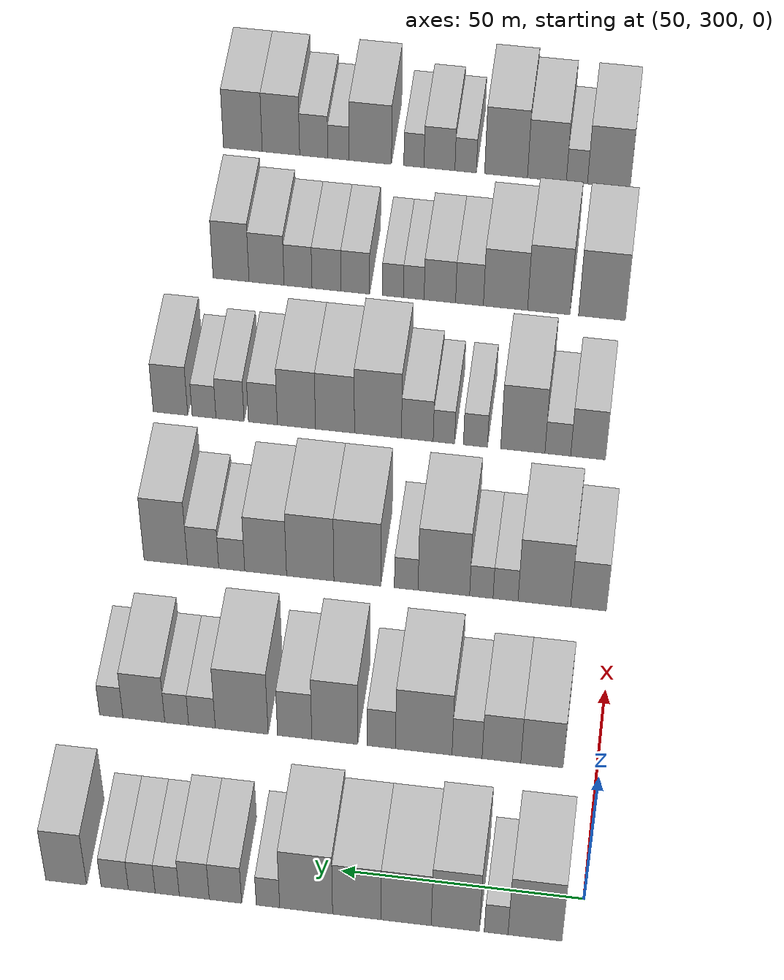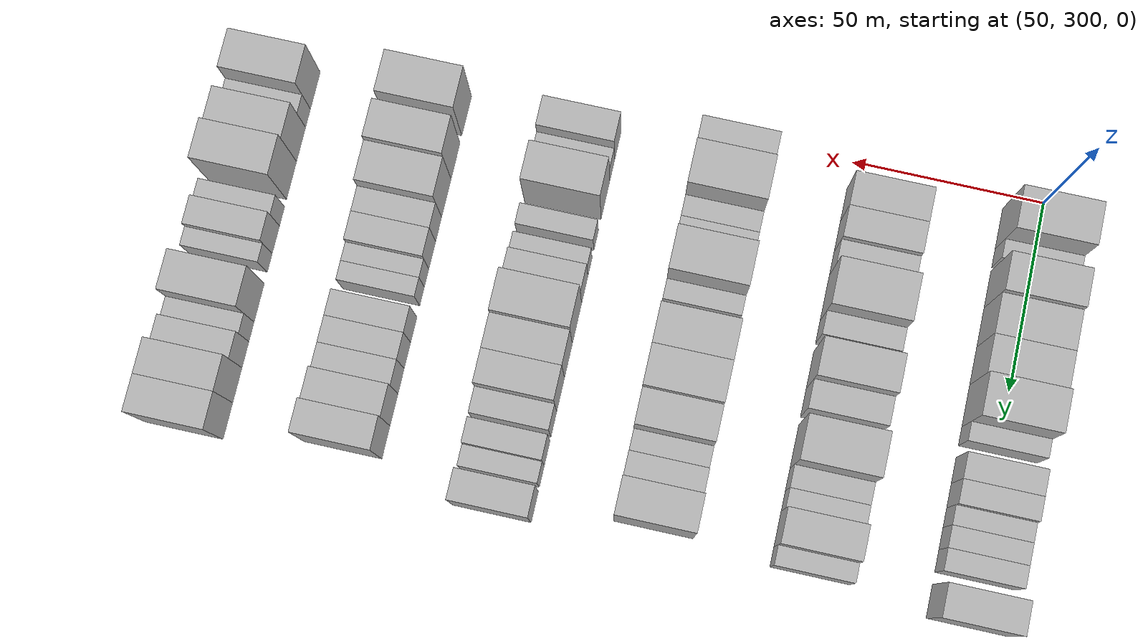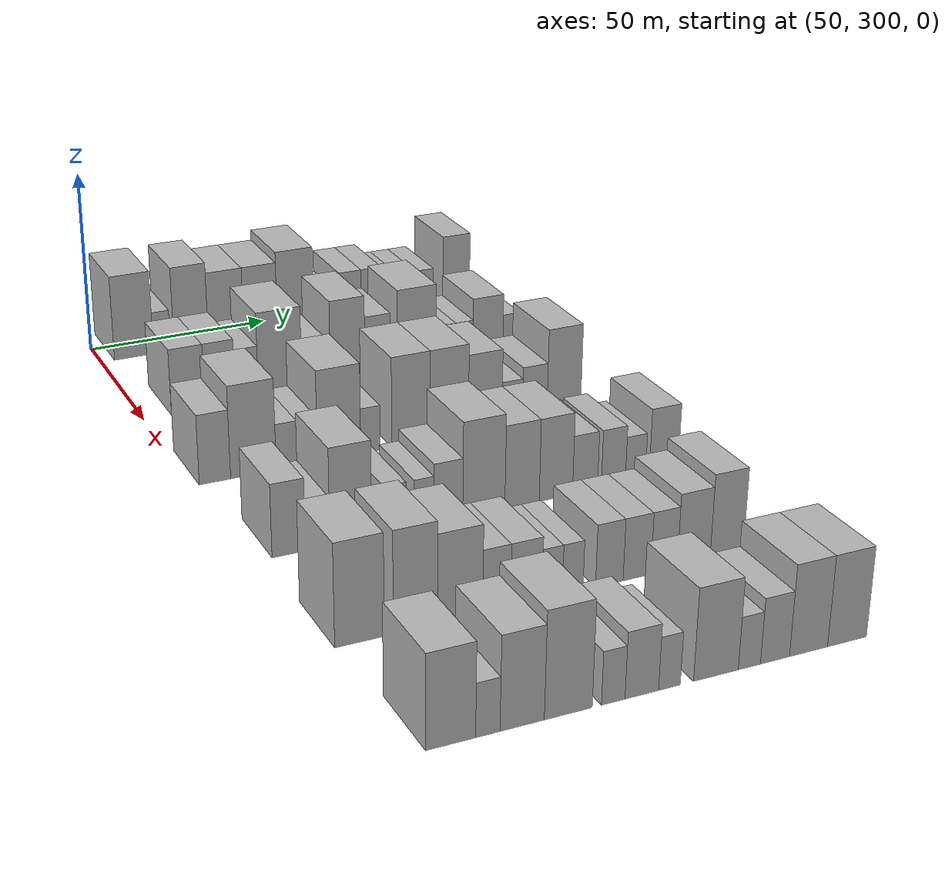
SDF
<sdf version="1.6">
 <world name="default">
  <model name="building_103">
   <static>1</static>
   <pose>50.0000 309.1850 0 0.000000 0.000000 0.000000</pose>
   <link name="link">
    <pose>0 0 12.00 0 0 0</pose>
    <collision name="collision"><geometry><box><size>20.0000 10.9504 24.0000</size></box></geometry></collision>
    <visual name="visual">
     <cast_shadows>0</cast_shadows>
     <geometry><box><size>20.0000 10.9504 24.0000</size></box></geometry>
     <material>
      <script>
       <uri>model://HANNAS_wall/materials/scripts</uri>
       <uri>model://HANNAS_wall/materials/textures</uri>
       <name>vrc/HANNAS_wall</name>
      </script>
     </material>
    </visual>
   </link>
  </model>
  <model name="building_104">
   <static>1</static>
   <pose>50.0000 317.0792 0 0.000000 0.000000 0.000000</pose>
   <link name="link">
    <pose>0 0 6.00 0 0 0</pose>
    <collision name="collision"><geometry><box><size>20.0000 4.8381 12.0000</size></box></geometry></collision>
    <visual name="visual">
     <cast_shadows>0</cast_shadows>
     <geometry><box><size>20.0000 4.8381 12.0000</size></box></geometry>
     <material>
      <script>
       <uri>model://HANNAS_wall/materials/scripts</uri>
       <uri>model://HANNAS_wall/materials/textures</uri>
       <name>vrc/HANNAS_wall</name>
      </script>
     </material>
    </visual>
   </link>
  </model>
  <model name="building_105">
   <static>1</static>
   <pose>50.0000 325.4073 0 0.000000 0.000000 0.000000</pose>
   <link name="link">
    <pose>0 0 12.00 0 0 0</pose>
    <collision name="collision"><geometry><box><size>20.0000 9.8181 24.0000</size></box></geometry></collision>
    <visual name="visual">
     <cast_shadows>0</cast_shadows>
     <geometry><box><size>20.0000 9.8181 24.0000</size></box></geometry>
     <material>
      <script>
       <uri>model://HANNAS_wall/materials/scripts</uri>
       <uri>model://HANNAS_wall/materials/textures</uri>
       <name>vrc/HANNAS_wall</name>
      </script>
     </material>
    </visual>
   </link>
  </model>
  <model name="building_106">
   <static>1</static>
   <pose>50.0000 335.4635 0 0.000000 0.000000 0.000000</pose>
   <link name="link">
    <pose>0 0 10.50 0 0 0</pose>
    <collision name="collision"><geometry><box><size>20.0000 10.2942 21.0000</size></box></geometry></collision>
    <visual name="visual">
     <cast_shadows>0</cast_shadows>
     <geometry><box><size>20.0000 10.2942 21.0000</size></box></geometry>
     <material>
      <script>
       <uri>model://HANNAS_wall/materials/scripts</uri>
       <uri>model://HANNAS_wall/materials/textures</uri>
       <name>vrc/HANNAS_wall</name>
      </script>
     </material>
    </visual>
   </link>
  </model>
  <model name="building_107">
   <static>1</static>
   <pose>50.0000 345.5547 0 0.000000 0.000000 0.000000</pose>
   <link name="link">
    <pose>0 0 10.50 0 0 0</pose>
    <collision name="collision"><geometry><box><size>20.0000 9.8883 21.0000</size></box></geometry></collision>
    <visual name="visual">
     <cast_shadows>0</cast_shadows>
     <geometry><box><size>20.0000 9.8883 21.0000</size></box></geometry>
     <material>
      <script>
       <uri>model://HANNAS_wall/materials/scripts</uri>
       <uri>model://HANNAS_wall/materials/textures</uri>
       <name>vrc/HANNAS_wall</name>
      </script>
     </material>
    </visual>
   </link>
  </model>
  <model name="building_108">
   <static>1</static>
   <pose>50.0000 355.9267 0 0.000000 0.000000 0.000000</pose>
   <link name="link">
    <pose>0 0 12.00 0 0 0</pose>
    <collision name="collision"><geometry><box><size>20.0000 10.8557 24.0000</size></box></geometry></collision>
    <visual name="visual">
     <cast_shadows>0</cast_shadows>
     <geometry><box><size>20.0000 10.8557 24.0000</size></box></geometry>
     <material>
      <script>
       <uri>model://HANNAS_wall/materials/scripts</uri>
       <uri>model://HANNAS_wall/materials/textures</uri>
       <name>vrc/HANNAS_wall</name>
      </script>
     </material>
    </visual>
   </link>
  </model>
  <model name="building_109">
   <static>1</static>
   <pose>50.0000 363.7673 0 0.000000 0.000000 0.000000</pose>
   <link name="link">
    <pose>0 0 6.00 0 0 0</pose>
    <collision name="collision"><geometry><box><size>20.0000 4.8254 12.0000</size></box></geometry></collision>
    <visual name="visual">
     <cast_shadows>0</cast_shadows>
     <geometry><box><size>20.0000 4.8254 12.0000</size></box></geometry>
     <material>
      <script>
       <uri>model://HANNAS_wall/materials/scripts</uri>
       <uri>model://HANNAS_wall/materials/textures</uri>
       <name>vrc/HANNAS_wall</name>
      </script>
     </material>
    </visual>
   </link>
  </model>
  <model name="building_110">
   <static>1</static>
   <pose>50.0000 372.5244 0 0.000000 0.000000 0.000000</pose>
   <link name="link">
    <pose>0 0 7.50 0 0 0</pose>
    <collision name="collision"><geometry><box><size>20.0000 6.6890 15.0000</size></box></geometry></collision>
    <visual name="visual">
     <cast_shadows>0</cast_shadows>
     <geometry><box><size>20.0000 6.6890 15.0000</size></box></geometry>
     <material>
      <script>
       <uri>model://HANNAS_wall/materials/scripts</uri>
       <uri>model://HANNAS_wall/materials/textures</uri>
       <name>vrc/HANNAS_wall</name>
      </script>
     </material>
    </visual>
   </link>
  </model>
  <model name="building_111">
   <static>1</static>
   <pose>50.0000 378.9645 0 0.000000 0.000000 0.000000</pose>
   <link name="link">
    <pose>0 0 7.50 0 0 0</pose>
    <collision name="collision"><geometry><box><size>20.0000 6.1912 15.0000</size></box></geometry></collision>
    <visual name="visual">
     <cast_shadows>0</cast_shadows>
     <geometry><box><size>20.0000 6.1912 15.0000</size></box></geometry>
     <material>
      <script>
       <uri>model://HANNAS_wall/materials/scripts</uri>
       <uri>model://HANNAS_wall/materials/textures</uri>
       <name>vrc/HANNAS_wall</name>
      </script>
     </material>
    </visual>
   </link>
  </model>
  <model name="building_112">
   <static>1</static>
   <pose>50.0000 384.5437 0 0.000000 0.000000 0.000000</pose>
   <link name="link">
    <pose>0 0 6.00 0 0 0</pose>
    <collision name="collision"><geometry><box><size>20.0000 4.9672 12.0000</size></box></geometry></collision>
    <visual name="visual">
     <cast_shadows>0</cast_shadows>
     <geometry><box><size>20.0000 4.9672 12.0000</size></box></geometry>
     <material>
      <script>
       <uri>model://HANNAS_wall/materials/scripts</uri>
       <uri>model://HANNAS_wall/materials/textures</uri>
       <name>vrc/HANNAS_wall</name>
      </script>
     </material>
    </visual>
   </link>
  </model>
  <model name="building_113">
   <static>1</static>
   <pose>50.0000 389.8139 0 0.000000 0.000000 0.000000</pose>
   <link name="link">
    <pose>0 0 6.00 0 0 0</pose>
    <collision name="collision"><geometry><box><size>20.0000 5.5732 12.0000</size></box></geometry></collision>
    <visual name="visual">
     <cast_shadows>0</cast_shadows>
     <geometry><box><size>20.0000 5.5732 12.0000</size></box></geometry>
     <material>
      <script>
       <uri>model://HANNAS_wall/materials/scripts</uri>
       <uri>model://HANNAS_wall/materials/textures</uri>
       <name>vrc/HANNAS_wall</name>
      </script>
     </material>
    </visual>
   </link>
  </model>
  <model name="building_114">
   <static>1</static>
   <pose>50.0000 395.4306 0 0.000000 0.000000 0.000000</pose>
   <link name="link">
    <pose>0 0 6.00 0 0 0</pose>
    <collision name="collision"><geometry><box><size>20.0000 5.6602 12.0000</size></box></geometry></collision>
    <visual name="visual">
     <cast_shadows>0</cast_shadows>
     <geometry><box><size>20.0000 5.6602 12.0000</size></box></geometry>
     <material>
      <script>
       <uri>model://HANNAS_wall/materials/scripts</uri>
       <uri>model://HANNAS_wall/materials/textures</uri>
       <name>vrc/HANNAS_wall</name>
      </script>
     </material>
    </visual>
   </link>
  </model>
  <model name="building_115">
   <static>1</static>
   <pose>50.0000 405.4915 0 0.000000 0.000000 0.000000</pose>
   <link name="link">
    <pose>0 0 10.50 0 0 0</pose>
    <collision name="collision"><geometry><box><size>20.0000 8.4617 21.0000</size></box></geometry></collision>
    <visual name="visual">
     <cast_shadows>0</cast_shadows>
     <geometry><box><size>20.0000 8.4617 21.0000</size></box></geometry>
     <material>
      <script>
       <uri>model://HANNAS_wall/materials/scripts</uri>
       <uri>model://HANNAS_wall/materials/textures</uri>
       <name>vrc/HANNAS_wall</name>
      </script>
     </material>
    </visual>
   </link>
  </model>
  <model name="building_239">
   <static>1</static>
   <pose>90.0000 311.7016 0 0.000000 0.000000 0.000000</pose>
   <link name="link">
    <pose>0 0 9.00 0 0 0</pose>
    <collision name="collision"><geometry><box><size>20.0000 8.8964 18.0000</size></box></geometry></collision>
    <visual name="visual">
     <cast_shadows>0</cast_shadows>
     <geometry><box><size>20.0000 8.8964 18.0000</size></box></geometry>
     <material>
      <script>
       <uri>model://HANNAS_wall/materials/scripts</uri>
       <uri>model://HANNAS_wall/materials/textures</uri>
       <name>vrc/HANNAS_wall</name>
      </script>
     </material>
    </visual>
   </link>
  </model>
  <model name="building_240">
   <static>1</static>
   <pose>90.0000 320.2366 0 0.000000 0.000000 0.000000</pose>
   <link name="link">
    <pose>0 0 9.00 0 0 0</pose>
    <collision name="collision"><geometry><box><size>20.0000 8.1736 18.0000</size></box></geometry></collision>
    <visual name="visual">
     <cast_shadows>0</cast_shadows>
     <geometry><box><size>20.0000 8.1736 18.0000</size></box></geometry>
     <material>
      <script>
       <uri>model://HANNAS_wall/materials/scripts</uri>
       <uri>model://HANNAS_wall/materials/textures</uri>
       <name>vrc/HANNAS_wall</name>
      </script>
     </material>
    </visual>
   </link>
  </model>
  <model name="building_241">
   <static>1</static>
   <pose>90.0000 327.5016 0 0.000000 0.000000 0.000000</pose>
   <link name="link">
    <pose>0 0 7.50 0 0 0</pose>
    <collision name="collision"><geometry><box><size>20.0000 6.3562 15.0000</size></box></geometry></collision>
    <visual name="visual">
     <cast_shadows>0</cast_shadows>
     <geometry><box><size>20.0000 6.3562 15.0000</size></box></geometry>
     <material>
      <script>
       <uri>model://HANNAS_wall/materials/scripts</uri>
       <uri>model://HANNAS_wall/materials/textures</uri>
       <name>vrc/HANNAS_wall</name>
      </script>
     </material>
    </visual>
   </link>
  </model>
  <model name="building_242">
   <static>1</static>
   <pose>90.0000 336.6633 0 0.000000 0.000000 0.000000</pose>
   <link name="link">
    <pose>0 0 12.00 0 0 0</pose>
    <collision name="collision"><geometry><box><size>20.0000 11.9672 24.0000</size></box></geometry></collision>
    <visual name="visual">
     <cast_shadows>0</cast_shadows>
     <geometry><box><size>20.0000 11.9672 24.0000</size></box></geometry>
     <material>
      <script>
       <uri>model://HANNAS_wall/materials/scripts</uri>
       <uri>model://HANNAS_wall/materials/textures</uri>
       <name>vrc/HANNAS_wall</name>
      </script>
     </material>
    </visual>
   </link>
  </model>
  <model name="building_243">
   <static>1</static>
   <pose>90.0000 345.6519 0 0.000000 0.000000 0.000000</pose>
   <link name="link">
    <pose>0 0 7.50 0 0 0</pose>
    <collision name="collision"><geometry><box><size>20.0000 6.0099 15.0000</size></box></geometry></collision>
    <visual name="visual">
     <cast_shadows>0</cast_shadows>
     <geometry><box><size>20.0000 6.0099 15.0000</size></box></geometry>
     <material>
      <script>
       <uri>model://HANNAS_wall/materials/scripts</uri>
       <uri>model://HANNAS_wall/materials/textures</uri>
       <name>vrc/HANNAS_wall</name>
      </script>
     </material>
    </visual>
   </link>
  </model>
  <model name="building_244">
   <static>1</static>
   <pose>90.0000 355.5329 0 0.000000 0.000000 0.000000</pose>
   <link name="link">
    <pose>0 0 12.00 0 0 0</pose>
    <collision name="collision"><geometry><box><size>20.0000 9.7520 24.0000</size></box></geometry></collision>
    <visual name="visual">
     <cast_shadows>0</cast_shadows>
     <geometry><box><size>20.0000 9.7520 24.0000</size></box></geometry>
     <material>
      <script>
       <uri>model://HANNAS_wall/materials/scripts</uri>
       <uri>model://HANNAS_wall/materials/textures</uri>
       <name>vrc/HANNAS_wall</name>
      </script>
     </material>
    </visual>
   </link>
  </model>
  <model name="building_245">
   <static>1</static>
   <pose>90.0000 364.0609 0 0.000000 0.000000 0.000000</pose>
   <link name="link">
    <pose>0 0 9.00 0 0 0</pose>
    <collision name="collision"><geometry><box><size>20.0000 7.3041 18.0000</size></box></geometry></collision>
    <visual name="visual">
     <cast_shadows>0</cast_shadows>
     <geometry><box><size>20.0000 7.3041 18.0000</size></box></geometry>
     <material>
      <script>
       <uri>model://HANNAS_wall/materials/scripts</uri>
       <uri>model://HANNAS_wall/materials/textures</uri>
       <name>vrc/HANNAS_wall</name>
      </script>
     </material>
    </visual>
   </link>
  </model>
  <model name="building_246">
   <static>1</static>
   <pose>90.0000 375.3575 0 0.000000 0.000000 0.000000</pose>
   <link name="link">
    <pose>0 0 12.00 0 0 0</pose>
    <collision name="collision"><geometry><box><size>20.0000 11.2891 24.0000</size></box></geometry></collision>
    <visual name="visual">
     <cast_shadows>0</cast_shadows>
     <geometry><box><size>20.0000 11.2891 24.0000</size></box></geometry>
     <material>
      <script>
       <uri>model://HANNAS_wall/materials/scripts</uri>
       <uri>model://HANNAS_wall/materials/textures</uri>
       <name>vrc/HANNAS_wall</name>
      </script>
     </material>
    </visual>
   </link>
  </model>
  <model name="building_247">
   <static>1</static>
   <pose>90.0000 383.8591 0 0.000000 0.000000 0.000000</pose>
   <link name="link">
    <pose>0 0 6.00 0 0 0</pose>
    <collision name="collision"><geometry><box><size>20.0000 5.7141 12.0000</size></box></geometry></collision>
    <visual name="visual">
     <cast_shadows>0</cast_shadows>
     <geometry><box><size>20.0000 5.7141 12.0000</size></box></geometry>
     <material>
      <script>
       <uri>model://HANNAS_wall/materials/scripts</uri>
       <uri>model://HANNAS_wall/materials/textures</uri>
       <name>vrc/HANNAS_wall</name>
      </script>
     </material>
    </visual>
   </link>
  </model>
  <model name="building_248">
   <static>1</static>
   <pose>90.0000 389.2737 0 0.000000 0.000000 0.000000</pose>
   <link name="link">
    <pose>0 0 6.00 0 0 0</pose>
    <collision name="collision"><geometry><box><size>20.0000 5.1151 12.0000</size></box></geometry></collision>
    <visual name="visual">
     <cast_shadows>0</cast_shadows>
     <geometry><box><size>20.0000 5.1151 12.0000</size></box></geometry>
     <material>
      <script>
       <uri>model://HANNAS_wall/materials/scripts</uri>
       <uri>model://HANNAS_wall/materials/textures</uri>
       <name>vrc/HANNAS_wall</name>
      </script>
     </material>
    </visual>
   </link>
  </model>
  <model name="building_249">
   <static>1</static>
   <pose>90.0000 396.3274 0 0.000000 0.000000 0.000000</pose>
   <link name="link">
    <pose>0 0 9.00 0 0 0</pose>
    <collision name="collision"><geometry><box><size>20.0000 8.9923 18.0000</size></box></geometry></collision>
    <visual name="visual">
     <cast_shadows>0</cast_shadows>
     <geometry><box><size>20.0000 8.9923 18.0000</size></box></geometry>
     <material>
      <script>
       <uri>model://HANNAS_wall/materials/scripts</uri>
       <uri>model://HANNAS_wall/materials/textures</uri>
       <name>vrc/HANNAS_wall</name>
      </script>
     </material>
    </visual>
   </link>
  </model>
  <model name="building_250">
   <static>1</static>
   <pose>90.0000 403.3296 0 0.000000 0.000000 0.000000</pose>
   <link name="link">
    <pose>0 0 6.00 0 0 0</pose>
    <collision name="collision"><geometry><box><size>20.0000 5.0120 12.0000</size></box></geometry></collision>
    <visual name="visual">
     <cast_shadows>0</cast_shadows>
     <geometry><box><size>20.0000 5.0120 12.0000</size></box></geometry>
     <material>
      <script>
       <uri>model://HANNAS_wall/materials/scripts</uri>
       <uri>model://HANNAS_wall/materials/textures</uri>
       <name>vrc/HANNAS_wall</name>
      </script>
     </material>
    </visual>
   </link>
  </model>
  <model name="building_376">
   <static>1</static>
   <pose>130.0000 305.4945 0 0.000000 0.000000 0.000000</pose>
   <link name="link">
    <pose>0 0 9.00 0 0 0</pose>
    <collision name="collision"><geometry><box><size>20.0000 7.7795 18.0000</size></box></geometry></collision>
    <visual name="visual">
     <cast_shadows>0</cast_shadows>
     <geometry><box><size>20.0000 7.7795 18.0000</size></box></geometry>
     <material>
      <script>
       <uri>model://HANNAS_wall/materials/scripts</uri>
       <uri>model://HANNAS_wall/materials/textures</uri>
       <name>vrc/HANNAS_wall</name>
      </script>
     </material>
    </visual>
   </link>
  </model>
  <model name="building_377">
   <static>1</static>
   <pose>130.0000 315.1176 0 0.000000 0.000000 0.000000</pose>
   <link name="link">
    <pose>0 0 12.00 0 0 0</pose>
    <collision name="collision"><geometry><box><size>20.0000 11.4667 24.0000</size></box></geometry></collision>
    <visual name="visual">
     <cast_shadows>0</cast_shadows>
     <geometry><box><size>20.0000 11.4667 24.0000</size></box></geometry>
     <material>
      <script>
       <uri>model://HANNAS_wall/materials/scripts</uri>
       <uri>model://HANNAS_wall/materials/textures</uri>
       <name>vrc/HANNAS_wall</name>
      </script>
     </material>
    </visual>
   </link>
  </model>
  <model name="building_378">
   <static>1</static>
   <pose>130.0000 323.5738 0 0.000000 0.000000 0.000000</pose>
   <link name="link">
    <pose>0 0 6.00 0 0 0</pose>
    <collision name="collision"><geometry><box><size>20.0000 5.4458 12.0000</size></box></geometry></collision>
    <visual name="visual">
     <cast_shadows>0</cast_shadows>
     <geometry><box><size>20.0000 5.4458 12.0000</size></box></geometry>
     <material>
      <script>
       <uri>model://HANNAS_wall/materials/scripts</uri>
       <uri>model://HANNAS_wall/materials/textures</uri>
       <name>vrc/HANNAS_wall</name>
      </script>
     </material>
    </visual>
   </link>
  </model>
  <model name="building_379">
   <static>1</static>
   <pose>130.0000 328.8610 0 0.000000 0.000000 0.000000</pose>
   <link name="link">
    <pose>0 0 6.00 0 0 0</pose>
    <collision name="collision"><geometry><box><size>20.0000 5.1287 12.0000</size></box></geometry></collision>
    <visual name="visual">
     <cast_shadows>0</cast_shadows>
     <geometry><box><size>20.0000 5.1287 12.0000</size></box></geometry>
     <material>
      <script>
       <uri>model://HANNAS_wall/materials/scripts</uri>
       <uri>model://HANNAS_wall/materials/textures</uri>
       <name>vrc/HANNAS_wall</name>
      </script>
     </material>
    </visual>
   </link>
  </model>
  <model name="building_380">
   <static>1</static>
   <pose>130.0000 337.0694 0 0.000000 0.000000 0.000000</pose>
   <link name="link">
    <pose>0 0 12.00 0 0 0</pose>
    <collision name="collision"><geometry><box><size>20.0000 11.2880 24.0000</size></box></geometry></collision>
    <visual name="visual">
     <cast_shadows>0</cast_shadows>
     <geometry><box><size>20.0000 11.2880 24.0000</size></box></geometry>
     <material>
      <script>
       <uri>model://HANNAS_wall/materials/scripts</uri>
       <uri>model://HANNAS_wall/materials/textures</uri>
       <name>vrc/HANNAS_wall</name>
      </script>
     </material>
    </visual>
   </link>
  </model>
  <model name="building_381">
   <static>1</static>
   <pose>130.0000 345.3097 0 0.000000 0.000000 0.000000</pose>
   <link name="link">
    <pose>0 0 6.00 0 0 0</pose>
    <collision name="collision"><geometry><box><size>20.0000 5.1926 12.0000</size></box></geometry></collision>
    <visual name="visual">
     <cast_shadows>0</cast_shadows>
     <geometry><box><size>20.0000 5.1926 12.0000</size></box></geometry>
     <material>
      <script>
       <uri>model://HANNAS_wall/materials/scripts</uri>
       <uri>model://HANNAS_wall/materials/textures</uri>
       <name>vrc/HANNAS_wall</name>
      </script>
     </material>
    </visual>
   </link>
  </model>
  <model name="building_382">
   <static>1</static>
   <pose>130.0000 356.0534 0 0.000000 0.000000 0.000000</pose>
   <link name="link">
    <pose>0 0 12.00 0 0 0</pose>
    <collision name="collision"><geometry><box><size>20.0000 10.2948 24.0000</size></box></geometry></collision>
    <visual name="visual">
     <cast_shadows>0</cast_shadows>
     <geometry><box><size>20.0000 10.2948 24.0000</size></box></geometry>
     <material>
      <script>
       <uri>model://HANNAS_wall/materials/scripts</uri>
       <uri>model://HANNAS_wall/materials/textures</uri>
       <name>vrc/HANNAS_wall</name>
      </script>
     </material>
    </visual>
   </link>
  </model>
  <model name="building_383">
   <static>1</static>
   <pose>130.0000 366.4220 0 0.000000 0.000000 0.000000</pose>
   <link name="link">
    <pose>0 0 12.00 0 0 0</pose>
    <collision name="collision"><geometry><box><size>20.0000 10.4425 24.0000</size></box></geometry></collision>
    <visual name="visual">
     <cast_shadows>0</cast_shadows>
     <geometry><box><size>20.0000 10.4425 24.0000</size></box></geometry>
     <material>
      <script>
       <uri>model://HANNAS_wall/materials/scripts</uri>
       <uri>model://HANNAS_wall/materials/textures</uri>
       <name>vrc/HANNAS_wall</name>
      </script>
     </material>
    </visual>
   </link>
  </model>
  <model name="building_384">
   <static>1</static>
   <pose>130.0000 376.2594 0 0.000000 0.000000 0.000000</pose>
   <link name="link">
    <pose>0 0 10.50 0 0 0</pose>
    <collision name="collision"><geometry><box><size>20.0000 9.2322 21.0000</size></box></geometry></collision>
    <visual name="visual">
     <cast_shadows>0</cast_shadows>
     <geometry><box><size>20.0000 9.2322 21.0000</size></box></geometry>
     <material>
      <script>
       <uri>model://HANNAS_wall/materials/scripts</uri>
       <uri>model://HANNAS_wall/materials/textures</uri>
       <name>vrc/HANNAS_wall</name>
      </script>
     </material>
    </visual>
   </link>
  </model>
  <model name="building_385">
   <static>1</static>
   <pose>130.0000 383.7558 0 0.000000 0.000000 0.000000</pose>
   <link name="link">
    <pose>0 0 6.00 0 0 0</pose>
    <collision name="collision"><geometry><box><size>20.0000 5.7607 12.0000</size></box></geometry></collision>
    <visual name="visual">
     <cast_shadows>0</cast_shadows>
     <geometry><box><size>20.0000 5.7607 12.0000</size></box></geometry>
     <material>
      <script>
       <uri>model://HANNAS_wall/materials/scripts</uri>
       <uri>model://HANNAS_wall/materials/textures</uri>
       <name>vrc/HANNAS_wall</name>
      </script>
     </material>
    </visual>
   </link>
  </model>
  <model name="building_386">
   <static>1</static>
   <pose>130.0000 390.1041 0 0.000000 0.000000 0.000000</pose>
   <link name="link">
    <pose>0 0 7.50 0 0 0</pose>
    <collision name="collision"><geometry><box><size>20.0000 6.9359 15.0000</size></box></geometry></collision>
    <visual name="visual">
     <cast_shadows>0</cast_shadows>
     <geometry><box><size>20.0000 6.9359 15.0000</size></box></geometry>
     <material>
      <script>
       <uri>model://HANNAS_wall/materials/scripts</uri>
       <uri>model://HANNAS_wall/materials/textures</uri>
       <name>vrc/HANNAS_wall</name>
      </script>
     </material>
    </visual>
   </link>
  </model>
  <model name="building_387">
   <static>1</static>
   <pose>130.0000 398.3816 0 0.000000 0.000000 0.000000</pose>
   <link name="link">
    <pose>0 0 12.00 0 0 0</pose>
    <collision name="collision"><geometry><box><size>20.0000 9.6190 24.0000</size></box></geometry></collision>
    <visual name="visual">
     <cast_shadows>0</cast_shadows>
     <geometry><box><size>20.0000 9.6190 24.0000</size></box></geometry>
     <material>
      <script>
       <uri>model://HANNAS_wall/materials/scripts</uri>
       <uri>model://HANNAS_wall/materials/textures</uri>
       <name>vrc/HANNAS_wall</name>
      </script>
     </material>
    </visual>
   </link>
  </model>
  <model name="building_505">
   <static>1</static>
   <pose>170.0000 309.1703 0 0.000000 0.000000 0.000000</pose>
   <link name="link">
    <pose>0 0 9.00 0 0 0</pose>
    <collision name="collision"><geometry><box><size>20.0000 7.8112 18.0000</size></box></geometry></collision>
    <visual name="visual">
     <cast_shadows>0</cast_shadows>
     <geometry><box><size>20.0000 7.8112 18.0000</size></box></geometry>
     <material>
      <script>
       <uri>model://HANNAS_wall/materials/scripts</uri>
       <uri>model://HANNAS_wall/materials/textures</uri>
       <name>vrc/HANNAS_wall</name>
      </script>
     </material>
    </visual>
   </link>
  </model>
  <model name="building_506">
   <static>1</static>
   <pose>170.0000 315.9822 0 0.000000 0.000000 0.000000</pose>
   <link name="link">
    <pose>0 0 6.00 0 0 0</pose>
    <collision name="collision"><geometry><box><size>20.0000 5.8126 12.0000</size></box></geometry></collision>
    <visual name="visual">
     <cast_shadows>0</cast_shadows>
     <geometry><box><size>20.0000 5.8126 12.0000</size></box></geometry>
     <material>
      <script>
       <uri>model://HANNAS_wall/materials/scripts</uri>
       <uri>model://HANNAS_wall/materials/textures</uri>
       <name>vrc/HANNAS_wall</name>
      </script>
     </material>
    </visual>
   </link>
  </model>
  <model name="building_507">
   <static>1</static>
   <pose>170.0000 323.8753 0 0.000000 0.000000 0.000000</pose>
   <link name="link">
    <pose>0 0 12.00 0 0 0</pose>
    <collision name="collision"><geometry><box><size>20.0000 9.9735 24.0000</size></box></geometry></collision>
    <visual name="visual">
     <cast_shadows>0</cast_shadows>
     <geometry><box><size>20.0000 9.9735 24.0000</size></box></geometry>
     <material>
      <script>
       <uri>model://HANNAS_wall/materials/scripts</uri>
       <uri>model://HANNAS_wall/materials/textures</uri>
       <name>vrc/HANNAS_wall</name>
      </script>
     </material>
    </visual>
   </link>
  </model>
  <model name="building_508">
   <static>1</static>
   <pose>170.0000 334.5763 0 0.000000 0.000000 0.000000</pose>
   <link name="link">
    <pose>0 0 6.00 0 0 0</pose>
    <collision name="collision"><geometry><box><size>20.0000 5.4285 12.0000</size></box></geometry></collision>
    <visual name="visual">
     <cast_shadows>0</cast_shadows>
     <geometry><box><size>20.0000 5.4285 12.0000</size></box></geometry>
     <material>
      <script>
       <uri>model://HANNAS_wall/materials/scripts</uri>
       <uri>model://HANNAS_wall/materials/textures</uri>
       <name>vrc/HANNAS_wall</name>
      </script>
     </material>
    </visual>
   </link>
  </model>
  <model name="building_509">
   <static>1</static>
   <pose>170.0000 341.7163 0 0.000000 0.000000 0.000000</pose>
   <link name="link">
    <pose>0 0 6.00 0 0 0</pose>
    <collision name="collision"><geometry><box><size>20.0000 4.8516 12.0000</size></box></geometry></collision>
    <visual name="visual">
     <cast_shadows>0</cast_shadows>
     <geometry><box><size>20.0000 4.8516 12.0000</size></box></geometry>
     <material>
      <script>
       <uri>model://HANNAS_wall/materials/scripts</uri>
       <uri>model://HANNAS_wall/materials/textures</uri>
       <name>vrc/HANNAS_wall</name>
      </script>
     </material>
    </visual>
   </link>
  </model>
  <model name="building_510">
   <static>1</static>
   <pose>170.0000 347.7448 0 0.000000 0.000000 0.000000</pose>
   <link name="link">
    <pose>0 0 7.50 0 0 0</pose>
    <collision name="collision"><geometry><box><size>20.0000 7.2053 15.0000</size></box></geometry></collision>
    <visual name="visual">
     <cast_shadows>0</cast_shadows>
     <geometry><box><size>20.0000 7.2053 15.0000</size></box></geometry>
     <material>
      <script>
       <uri>model://HANNAS_wall/materials/scripts</uri>
       <uri>model://HANNAS_wall/materials/textures</uri>
       <name>vrc/HANNAS_wall</name>
      </script>
     </material>
    </visual>
   </link>
  </model>
  <model name="building_511">
   <static>1</static>
   <pose>170.0000 356.6832 0 0.000000 0.000000 0.000000</pose>
   <link name="link">
    <pose>0 0 12.00 0 0 0</pose>
    <collision name="collision"><geometry><box><size>20.0000 10.6717 24.0000</size></box></geometry></collision>
    <visual name="visual">
     <cast_shadows>0</cast_shadows>
     <geometry><box><size>20.0000 10.6717 24.0000</size></box></geometry>
     <material>
      <script>
       <uri>model://HANNAS_wall/materials/scripts</uri>
       <uri>model://HANNAS_wall/materials/textures</uri>
       <name>vrc/HANNAS_wall</name>
      </script>
     </material>
    </visual>
   </link>
  </model>
  <model name="building_512">
   <static>1</static>
   <pose>170.0000 366.4510 0 0.000000 0.000000 0.000000</pose>
   <link name="link">
    <pose>0 0 10.50 0 0 0</pose>
    <collision name="collision"><geometry><box><size>20.0000 8.8638 21.0000</size></box></geometry></collision>
    <visual name="visual">
     <cast_shadows>0</cast_shadows>
     <geometry><box><size>20.0000 8.8638 21.0000</size></box></geometry>
     <material>
      <script>
       <uri>model://HANNAS_wall/materials/scripts</uri>
       <uri>model://HANNAS_wall/materials/textures</uri>
       <name>vrc/HANNAS_wall</name>
      </script>
     </material>
    </visual>
   </link>
  </model>
  <model name="building_513">
   <static>1</static>
   <pose>170.0000 375.2350 0 0.000000 0.000000 0.000000</pose>
   <link name="link">
    <pose>0 0 10.50 0 0 0</pose>
    <collision name="collision"><geometry><box><size>20.0000 8.7040 21.0000</size></box></geometry></collision>
    <visual name="visual">
     <cast_shadows>0</cast_shadows>
     <geometry><box><size>20.0000 8.7040 21.0000</size></box></geometry>
     <material>
      <script>
       <uri>model://HANNAS_wall/materials/scripts</uri>
       <uri>model://HANNAS_wall/materials/textures</uri>
       <name>vrc/HANNAS_wall</name>
      </script>
     </material>
    </visual>
   </link>
  </model>
  <model name="building_514">
   <static>1</static>
   <pose>170.0000 382.8912 0 0.000000 0.000000 0.000000</pose>
   <link name="link">
    <pose>0 0 7.50 0 0 0</pose>
    <collision name="collision"><geometry><box><size>20.0000 6.6085 15.0000</size></box></geometry></collision>
    <visual name="visual">
     <cast_shadows>0</cast_shadows>
     <geometry><box><size>20.0000 6.6085 15.0000</size></box></geometry>
     <material>
      <script>
       <uri>model://HANNAS_wall/materials/scripts</uri>
       <uri>model://HANNAS_wall/materials/textures</uri>
       <name>vrc/HANNAS_wall</name>
      </script>
     </material>
    </visual>
   </link>
  </model>
  <model name="building_515">
   <static>1</static>
   <pose>170.0000 390.4177 0 0.000000 0.000000 0.000000</pose>
   <link name="link">
    <pose>0 0 7.50 0 0 0</pose>
    <collision name="collision"><geometry><box><size>20.0000 6.4445 15.0000</size></box></geometry></collision>
    <visual name="visual">
     <cast_shadows>0</cast_shadows>
     <geometry><box><size>20.0000 6.4445 15.0000</size></box></geometry>
     <material>
      <script>
       <uri>model://HANNAS_wall/materials/scripts</uri>
       <uri>model://HANNAS_wall/materials/textures</uri>
       <name>vrc/HANNAS_wall</name>
      </script>
     </material>
    </visual>
   </link>
  </model>
  <model name="building_516">
   <static>1</static>
   <pose>170.0000 396.3677 0 0.000000 0.000000 0.000000</pose>
   <link name="link">
    <pose>0 0 6.00 0 0 0</pose>
    <collision name="collision"><geometry><box><size>20.0000 5.4556 12.0000</size></box></geometry></collision>
    <visual name="visual">
     <cast_shadows>0</cast_shadows>
     <geometry><box><size>20.0000 5.4556 12.0000</size></box></geometry>
     <material>
      <script>
       <uri>model://HANNAS_wall/materials/scripts</uri>
       <uri>model://HANNAS_wall/materials/textures</uri>
       <name>vrc/HANNAS_wall</name>
      </script>
     </material>
    </visual>
   </link>
  </model>
  <model name="building_517">
   <static>1</static>
   <pose>170.0000 404.0526 0 0.000000 0.000000 0.000000</pose>
   <link name="link">
    <pose>0 0 9.00 0 0 0</pose>
    <collision name="collision"><geometry><box><size>20.0000 7.9140 18.0000</size></box></geometry></collision>
    <visual name="visual">
     <cast_shadows>0</cast_shadows>
     <geometry><box><size>20.0000 7.9140 18.0000</size></box></geometry>
     <material>
      <script>
       <uri>model://HANNAS_wall/materials/scripts</uri>
       <uri>model://HANNAS_wall/materials/textures</uri>
       <name>vrc/HANNAS_wall</name>
      </script>
     </material>
    </visual>
   </link>
  </model>
  <model name="building_650">
   <static>1</static>
   <pose>210.0000 309.5315 0 0.000000 0.000000 0.000000</pose>
   <link name="link">
    <pose>0 0 12.00 0 0 0</pose>
    <collision name="collision"><geometry><box><size>20.0000 10.8585 24.0000</size></box></geometry></collision>
    <visual name="visual">
     <cast_shadows>0</cast_shadows>
     <geometry><box><size>20.0000 10.8585 24.0000</size></box></geometry>
     <material>
      <script>
       <uri>model://HANNAS_wall/materials/scripts</uri>
       <uri>model://HANNAS_wall/materials/textures</uri>
       <name>vrc/HANNAS_wall</name>
      </script>
     </material>
    </visual>
   </link>
  </model>
  <model name="building_651">
   <static>1</static>
   <pose>210.0000 321.8988 0 0.000000 0.000000 0.000000</pose>
   <link name="link">
    <pose>0 0 12.00 0 0 0</pose>
    <collision name="collision"><geometry><box><size>20.0000 9.8761 24.0000</size></box></geometry></collision>
    <visual name="visual">
     <cast_shadows>0</cast_shadows>
     <geometry><box><size>20.0000 9.8761 24.0000</size></box></geometry>
     <material>
      <script>
       <uri>model://HANNAS_wall/materials/scripts</uri>
       <uri>model://HANNAS_wall/materials/textures</uri>
       <name>vrc/HANNAS_wall</name>
      </script>
     </material>
    </visual>
   </link>
  </model>
  <model name="building_652">
   <static>1</static>
   <pose>210.0000 331.9916 0 0.000000 0.000000 0.000000</pose>
   <link name="link">
    <pose>0 0 10.50 0 0 0</pose>
    <collision name="collision"><geometry><box><size>20.0000 10.3096 21.0000</size></box></geometry></collision>
    <visual name="visual">
     <cast_shadows>0</cast_shadows>
     <geometry><box><size>20.0000 10.3096 21.0000</size></box></geometry>
     <material>
      <script>
       <uri>model://HANNAS_wall/materials/scripts</uri>
       <uri>model://HANNAS_wall/materials/textures</uri>
       <name>vrc/HANNAS_wall</name>
      </script>
     </material>
    </visual>
   </link>
  </model>
  <model name="building_653">
   <static>1</static>
   <pose>210.0000 340.3968 0 0.000000 0.000000 0.000000</pose>
   <link name="link">
    <pose>0 0 7.50 0 0 0</pose>
    <collision name="collision"><geometry><box><size>20.0000 6.5007 15.0000</size></box></geometry></collision>
    <visual name="visual">
     <cast_shadows>0</cast_shadows>
     <geometry><box><size>20.0000 6.5007 15.0000</size></box></geometry>
     <material>
      <script>
       <uri>model://HANNAS_wall/materials/scripts</uri>
       <uri>model://HANNAS_wall/materials/textures</uri>
       <name>vrc/HANNAS_wall</name>
      </script>
     </material>
    </visual>
   </link>
  </model>
  <model name="building_654">
   <static>1</static>
   <pose>210.0000 347.3310 0 0.000000 0.000000 0.000000</pose>
   <link name="link">
    <pose>0 0 7.50 0 0 0</pose>
    <collision name="collision"><geometry><box><size>20.0000 7.3678 15.0000</size></box></geometry></collision>
    <visual name="visual">
     <cast_shadows>0</cast_shadows>
     <geometry><box><size>20.0000 7.3678 15.0000</size></box></geometry>
     <material>
      <script>
       <uri>model://HANNAS_wall/materials/scripts</uri>
       <uri>model://HANNAS_wall/materials/textures</uri>
       <name>vrc/HANNAS_wall</name>
      </script>
     </material>
    </visual>
   </link>
  </model>
  <model name="building_655">
   <static>1</static>
   <pose>210.0000 353.4324 0 0.000000 0.000000 0.000000</pose>
   <link name="link">
    <pose>0 0 6.00 0 0 0</pose>
    <collision name="collision"><geometry><box><size>20.0000 4.8352 12.0000</size></box></geometry></collision>
    <visual name="visual">
     <cast_shadows>0</cast_shadows>
     <geometry><box><size>20.0000 4.8352 12.0000</size></box></geometry>
     <material>
      <script>
       <uri>model://HANNAS_wall/materials/scripts</uri>
       <uri>model://HANNAS_wall/materials/textures</uri>
       <name>vrc/HANNAS_wall</name>
      </script>
     </material>
    </visual>
   </link>
  </model>
  <model name="building_656">
   <static>1</static>
   <pose>210.0000 358.3197 0 0.000000 0.000000 0.000000</pose>
   <link name="link">
    <pose>0 0 6.00 0 0 0</pose>
    <collision name="collision"><geometry><box><size>20.0000 4.9393 12.0000</size></box></geometry></collision>
    <visual name="visual">
     <cast_shadows>0</cast_shadows>
     <geometry><box><size>20.0000 4.9393 12.0000</size></box></geometry>
     <material>
      <script>
       <uri>model://HANNAS_wall/materials/scripts</uri>
       <uri>model://HANNAS_wall/materials/textures</uri>
       <name>vrc/HANNAS_wall</name>
      </script>
     </material>
    </visual>
   </link>
  </model>
  <model name="building_657">
   <static>1</static>
   <pose>210.0000 367.1511 0 0.000000 0.000000 0.000000</pose>
   <link name="link">
    <pose>0 0 7.50 0 0 0</pose>
    <collision name="collision"><geometry><box><size>20.0000 6.7236 15.0000</size></box></geometry></collision>
    <visual name="visual">
     <cast_shadows>0</cast_shadows>
     <geometry><box><size>20.0000 6.7236 15.0000</size></box></geometry>
     <material>
      <script>
       <uri>model://HANNAS_wall/materials/scripts</uri>
       <uri>model://HANNAS_wall/materials/textures</uri>
       <name>vrc/HANNAS_wall</name>
      </script>
     </material>
    </visual>
   </link>
  </model>
  <model name="building_658">
   <static>1</static>
   <pose>210.0000 373.9311 0 0.000000 0.000000 0.000000</pose>
   <link name="link">
    <pose>0 0 7.50 0 0 0</pose>
    <collision name="collision"><geometry><box><size>20.0000 6.8364 15.0000</size></box></geometry></collision>
    <visual name="visual">
     <cast_shadows>0</cast_shadows>
     <geometry><box><size>20.0000 6.8364 15.0000</size></box></geometry>
     <material>
      <script>
       <uri>model://HANNAS_wall/materials/scripts</uri>
       <uri>model://HANNAS_wall/materials/textures</uri>
       <name>vrc/HANNAS_wall</name>
      </script>
     </material>
    </visual>
   </link>
  </model>
  <model name="building_659">
   <static>1</static>
   <pose>210.0000 380.6351 0 0.000000 0.000000 0.000000</pose>
   <link name="link">
    <pose>0 0 7.50 0 0 0</pose>
    <collision name="collision"><geometry><box><size>20.0000 6.5716 15.0000</size></box></geometry></collision>
    <visual name="visual">
     <cast_shadows>0</cast_shadows>
     <geometry><box><size>20.0000 6.5716 15.0000</size></box></geometry>
     <material>
      <script>
       <uri>model://HANNAS_wall/materials/scripts</uri>
       <uri>model://HANNAS_wall/materials/textures</uri>
       <name>vrc/HANNAS_wall</name>
      </script>
     </material>
    </visual>
   </link>
  </model>
  <model name="building_660">
   <static>1</static>
   <pose>210.0000 388.0563 0 0.000000 0.000000 0.000000</pose>
   <link name="link">
    <pose>0 0 9.00 0 0 0</pose>
    <collision name="collision"><geometry><box><size>20.0000 8.2708 18.0000</size></box></geometry></collision>
    <visual name="visual">
     <cast_shadows>0</cast_shadows>
     <geometry><box><size>20.0000 8.2708 18.0000</size></box></geometry>
     <material>
      <script>
       <uri>model://HANNAS_wall/materials/scripts</uri>
       <uri>model://HANNAS_wall/materials/textures</uri>
       <name>vrc/HANNAS_wall</name>
      </script>
     </material>
    </visual>
   </link>
  </model>
  <model name="building_661">
   <static>1</static>
   <pose>210.0000 396.4376 0 0.000000 0.000000 0.000000</pose>
   <link name="link">
    <pose>0 0 10.50 0 0 0</pose>
    <collision name="collision"><geometry><box><size>20.0000 8.4919 21.0000</size></box></geometry></collision>
    <visual name="visual">
     <cast_shadows>0</cast_shadows>
     <geometry><box><size>20.0000 8.4919 21.0000</size></box></geometry>
     <material>
      <script>
       <uri>model://HANNAS_wall/materials/scripts</uri>
       <uri>model://HANNAS_wall/materials/textures</uri>
       <name>vrc/HANNAS_wall</name>
      </script>
     </material>
    </visual>
   </link>
  </model>
  <model name="building_775">
   <static>1</static>
   <pose>250.0000 311.3843 0 0.000000 0.000000 0.000000</pose>
   <link name="link">
    <pose>0 0 10.50 0 0 0</pose>
    <collision name="collision"><geometry><box><size>20.0000 10.2349 21.0000</size></box></geometry></collision>
    <visual name="visual">
     <cast_shadows>0</cast_shadows>
     <geometry><box><size>20.0000 10.2349 21.0000</size></box></geometry>
     <material>
      <script>
       <uri>model://HANNAS_wall/materials/scripts</uri>
       <uri>model://HANNAS_wall/materials/textures</uri>
       <name>vrc/HANNAS_wall</name>
      </script>
     </material>
    </visual>
   </link>
  </model>
  <model name="building_776">
   <static>1</static>
   <pose>250.0000 319.0342 0 0.000000 0.000000 0.000000</pose>
   <link name="link">
    <pose>0 0 6.00 0 0 0</pose>
    <collision name="collision"><geometry><box><size>20.0000 5.0649 12.0000</size></box></geometry></collision>
    <visual name="visual">
     <cast_shadows>0</cast_shadows>
     <geometry><box><size>20.0000 5.0649 12.0000</size></box></geometry>
     <material>
      <script>
       <uri>model://HANNAS_wall/materials/scripts</uri>
       <uri>model://HANNAS_wall/materials/textures</uri>
       <name>vrc/HANNAS_wall</name>
      </script>
     </material>
    </visual>
   </link>
  </model>
  <model name="building_777">
   <static>1</static>
   <pose>250.0000 326.2388 0 0.000000 0.000000 0.000000</pose>
   <link name="link">
    <pose>0 0 10.50 0 0 0</pose>
    <collision name="collision"><geometry><box><size>20.0000 9.3444 21.0000</size></box></geometry></collision>
    <visual name="visual">
     <cast_shadows>0</cast_shadows>
     <geometry><box><size>20.0000 9.3444 21.0000</size></box></geometry>
     <material>
      <script>
       <uri>model://HANNAS_wall/materials/scripts</uri>
       <uri>model://HANNAS_wall/materials/textures</uri>
       <name>vrc/HANNAS_wall</name>
      </script>
     </material>
    </visual>
   </link>
  </model>
  <model name="building_778">
   <static>1</static>
   <pose>250.0000 336.0631 0 0.000000 0.000000 0.000000</pose>
   <link name="link">
    <pose>0 0 12.00 0 0 0</pose>
    <collision name="collision"><geometry><box><size>20.0000 10.3041 24.0000</size></box></geometry></collision>
    <visual name="visual">
     <cast_shadows>0</cast_shadows>
     <geometry><box><size>20.0000 10.3041 24.0000</size></box></geometry>
     <material>
      <script>
       <uri>model://HANNAS_wall/materials/scripts</uri>
       <uri>model://HANNAS_wall/materials/textures</uri>
       <name>vrc/HANNAS_wall</name>
      </script>
     </material>
    </visual>
   </link>
  </model>
  <model name="building_779">
   <static>1</static>
   <pose>250.0000 345.7977 0 0.000000 0.000000 0.000000</pose>
   <link name="link">
    <pose>0 0 6.00 0 0 0</pose>
    <collision name="collision"><geometry><box><size>20.0000 5.1651 12.0000</size></box></geometry></collision>
    <visual name="visual">
     <cast_shadows>0</cast_shadows>
     <geometry><box><size>20.0000 5.1651 12.0000</size></box></geometry>
     <material>
      <script>
       <uri>model://HANNAS_wall/materials/scripts</uri>
       <uri>model://HANNAS_wall/materials/textures</uri>
       <name>vrc/HANNAS_wall</name>
      </script>
     </material>
    </visual>
   </link>
  </model>
  <model name="building_780">
   <static>1</static>
   <pose>250.0000 352.1119 0 0.000000 0.000000 0.000000</pose>
   <link name="link">
    <pose>0 0 7.50 0 0 0</pose>
    <collision name="collision"><geometry><box><size>20.0000 7.4631 15.0000</size></box></geometry></collision>
    <visual name="visual">
     <cast_shadows>0</cast_shadows>
     <geometry><box><size>20.0000 7.4631 15.0000</size></box></geometry>
     <material>
      <script>
       <uri>model://HANNAS_wall/materials/scripts</uri>
       <uri>model://HANNAS_wall/materials/textures</uri>
       <name>vrc/HANNAS_wall</name>
      </script>
     </material>
    </visual>
   </link>
  </model>
  <model name="building_781">
   <static>1</static>
   <pose>250.0000 358.2833 0 0.000000 0.000000 0.000000</pose>
   <link name="link">
    <pose>0 0 6.00 0 0 0</pose>
    <collision name="collision"><geometry><box><size>20.0000 4.8798 12.0000</size></box></geometry></collision>
    <visual name="visual">
     <cast_shadows>0</cast_shadows>
     <geometry><box><size>20.0000 4.8798 12.0000</size></box></geometry>
     <material>
      <script>
       <uri>model://HANNAS_wall/materials/scripts</uri>
       <uri>model://HANNAS_wall/materials/textures</uri>
       <name>vrc/HANNAS_wall</name>
      </script>
     </material>
    </visual>
   </link>
  </model>
  <model name="building_782">
   <static>1</static>
   <pose>250.0000 368.8547 0 0.000000 0.000000 0.000000</pose>
   <link name="link">
    <pose>0 0 10.50 0 0 0</pose>
    <collision name="collision"><geometry><box><size>20.0000 10.2630 21.0000</size></box></geometry></collision>
    <visual name="visual">
     <cast_shadows>0</cast_shadows>
     <geometry><box><size>20.0000 10.2630 21.0000</size></box></geometry>
     <material>
      <script>
       <uri>model://HANNAS_wall/materials/scripts</uri>
       <uri>model://HANNAS_wall/materials/textures</uri>
       <name>vrc/HANNAS_wall</name>
      </script>
     </material>
    </visual>
   </link>
  </model>
  <model name="building_783">
   <static>1</static>
   <pose>250.0000 376.5673 0 0.000000 0.000000 0.000000</pose>
   <link name="link">
    <pose>0 0 6.00 0 0 0</pose>
    <collision name="collision"><geometry><box><size>20.0000 5.1621 12.0000</size></box></geometry></collision>
    <visual name="visual">
     <cast_shadows>0</cast_shadows>
     <geometry><box><size>20.0000 5.1621 12.0000</size></box></geometry>
     <material>
      <script>
       <uri>model://HANNAS_wall/materials/scripts</uri>
       <uri>model://HANNAS_wall/materials/textures</uri>
       <name>vrc/HANNAS_wall</name>
      </script>
     </material>
    </visual>
   </link>
  </model>
  <model name="building_784">
   <static>1</static>
   <pose>250.0000 382.5717 0 0.000000 0.000000 0.000000</pose>
   <link name="link">
    <pose>0 0 7.50 0 0 0</pose>
    <collision name="collision"><geometry><box><size>20.0000 6.8468 15.0000</size></box></geometry></collision>
    <visual name="visual">
     <cast_shadows>0</cast_shadows>
     <geometry><box><size>20.0000 6.8468 15.0000</size></box></geometry>
     <material>
      <script>
       <uri>model://HANNAS_wall/materials/scripts</uri>
       <uri>model://HANNAS_wall/materials/textures</uri>
       <name>vrc/HANNAS_wall</name>
      </script>
     </material>
    </visual>
   </link>
  </model>
  <model name="building_785">
   <static>1</static>
   <pose>250.0000 390.5465 0 0.000000 0.000000 0.000000</pose>
   <link name="link">
    <pose>0 0 10.50 0 0 0</pose>
    <collision name="collision"><geometry><box><size>20.0000 9.1028 21.0000</size></box></geometry></collision>
    <visual name="visual">
     <cast_shadows>0</cast_shadows>
     <geometry><box><size>20.0000 9.1028 21.0000</size></box></geometry>
     <material>
      <script>
       <uri>model://HANNAS_wall/materials/scripts</uri>
       <uri>model://HANNAS_wall/materials/textures</uri>
       <name>vrc/HANNAS_wall</name>
      </script>
     </material>
    </visual>
   </link>
  </model>
  <model name="building_786">
   <static>1</static>
   <pose>250.0000 399.8216 0 0.000000 0.000000 0.000000</pose>
   <link name="link">
    <pose>0 0 10.50 0 0 0</pose>
    <collision name="collision"><geometry><box><size>20.0000 9.4473 21.0000</size></box></geometry></collision>
    <visual name="visual">
     <cast_shadows>0</cast_shadows>
     <geometry><box><size>20.0000 9.4473 21.0000</size></box></geometry>
     <material>
      <script>
       <uri>model://HANNAS_wall/materials/scripts</uri>
       <uri>model://HANNAS_wall/materials/textures</uri>
       <name>vrc/HANNAS_wall</name>
      </script>
     </material>
    </visual>
   </link>
  </model>
 </world>
</sdf>
